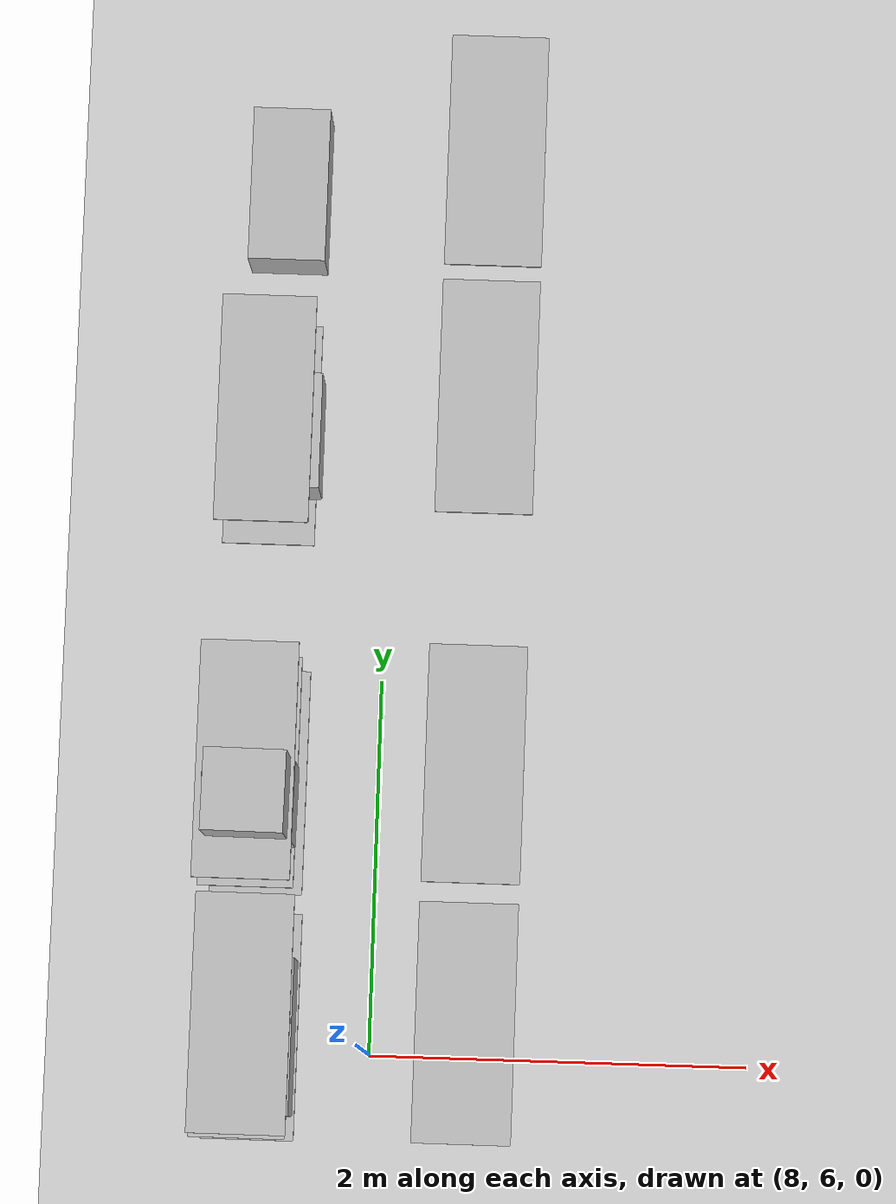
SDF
<sdf version="1.6">
 <world name="default">
  <model name="ground_plane">
   <static>1</static>
   <link name="link">
    <collision name="collision">
     <geometry><plane><normal>0 0 1</normal><size>300 300</size></plane></geometry>
     <surface>
      <contact><collide_bitmask>65535</collide_bitmask></contact>
      <friction><ode><mu>100</mu><mu2>50</mu2></ode></friction>
     </surface>
    </collision>
    <visual name="visual">
     <geometry><plane><normal>0 0 1</normal><size>100 100</size></plane></geometry>
     <material>
      <script><uri>file://media/materials/scripts/gazebo.material</uri><name>Gazebo/Grey</name></script>
     </material>
    </visual>
   </link>
  </model>
  <model name="Plano">
   <link name="link">
    <gravity>0</gravity>
    <pose>-0.103478 0.986463 0.8108 0 -0 0</pose>
    <inertial>
     <mass>1e-06</mass>
     <inertia><ixx>0.00058</ixx><ixy>0</ixy><ixz>0</ixz><iyy>0.00058</iyy><iyz>0</iyz><izz>0.00019</izz></inertia>
    </inertial>
    <visual name="visual">
     <geometry><box><size>0.2 1e-06 0.2</size></box></geometry>
     <material>
      <script>
       <uri>model://Plano/materials/scripts</uri>
       <uri>model://Plano/materials/textures</uri>
       <name>Plano/Diffuse</name>
      </script>
      <shader type="pixel"/>
     </material>
     <cast_shadows>0</cast_shadows>
    </visual>
    <collision name="collision">
     <geometry><box><size>0.2 1e-06 0.2</size></box></geometry>
     <surface>
      <friction>
       <ode><mu>1</mu><mu2>1</mu2><fdir1>0 0 0</fdir1><slip1>0</slip1><slip2>0</slip2></ode>
       <torsional>
        <coefficient>1</coefficient>
        <patch_radius>0</patch_radius>
        <surface_radius>0</surface_radius>
        <use_patch_radius>1</use_patch_radius>
        <ode><slip>0</slip></ode>
       </torsional>
      </friction>
      <bounce><restitution_coefficient>0</restitution_coefficient><threshold>1e+06</threshold></bounce>
      <contact>
       <collide_without_contact>0</collide_without_contact>
       <collide_without_contact_bitmask>1</collide_without_contact_bitmask>
       <collide_bitmask>1</collide_bitmask>
       <ode>
        <soft_cfm>0</soft_cfm>
        <soft_erp>0.2</soft_erp>
        <kp>1e+13</kp>
        <kd>1</kd>
        <max_vel>0.01</max_vel>
        <min_depth>0</min_depth>
       </ode>
       <bullet>
        <split_impulse>1</split_impulse>
        <split_impulse_penetration_threshold>-0.01</split_impulse_penetration_threshold>
        <soft_cfm>0</soft_cfm>
        <soft_erp>0.2</soft_erp>
        <kp>1e+13</kp>
        <kd>1</kd>
       </bullet>
      </contact>
     </surface>
    </collision>
   </link>
   <static>0</static>
   <pose>6.24495 5.89293 0.053748 0 0 -1.57043</pose>
  </model>
  <model name="Plano2">
   <link name="link">
    <gravity>0</gravity>
    <pose>0.45527 1.12131 0.660976 0 -0 0</pose>
    <inertial>
     <mass>1e-06</mass>
     <inertia><ixx>0.00058</ixx><ixy>0</ixy><ixz>0</ixz><iyy>0.00058</iyy><iyz>0</iyz><izz>0.00019</izz></inertia>
    </inertial>
    <visual name="visual">
     <geometry><box><size>0.2 1e-06 0.2</size></box></geometry>
     <material>
      <script>
       <uri>model://Plano2/materials/scripts</uri>
       <uri>model://Plano2/materials/textures</uri>
       <name>Plano2/Diffuse</name>
      </script>
      <shader type="pixel"/>
     </material>
     <cast_shadows>0</cast_shadows>
    </visual>
    <collision name="collision">
     <geometry><box><size>0.2 1e-06 0.2</size></box></geometry>
     <surface>
      <friction>
       <ode><mu>1</mu><mu2>1</mu2><fdir1>0 0 0</fdir1><slip1>0</slip1><slip2>0</slip2></ode>
       <torsional>
        <coefficient>1</coefficient>
        <patch_radius>0</patch_radius>
        <surface_radius>0</surface_radius>
        <use_patch_radius>1</use_patch_radius>
        <ode><slip>0</slip></ode>
       </torsional>
      </friction>
      <bounce><restitution_coefficient>0</restitution_coefficient><threshold>1e+06</threshold></bounce>
      <contact>
       <collide_without_contact>0</collide_without_contact>
       <collide_without_contact_bitmask>1</collide_without_contact_bitmask>
       <collide_bitmask>1</collide_bitmask>
       <ode>
        <soft_cfm>0</soft_cfm>
        <soft_erp>0.2</soft_erp>
        <kp>1e+13</kp>
        <kd>1</kd>
        <max_vel>0.01</max_vel>
        <min_depth>0</min_depth>
       </ode>
       <bullet>
        <split_impulse>1</split_impulse>
        <split_impulse_penetration_threshold>-0.01</split_impulse_penetration_threshold>
        <soft_cfm>0</soft_cfm>
        <soft_erp>0.2</soft_erp>
        <kp>1e+13</kp>
        <kd>1</kd>
       </bullet>
      </contact>
     </surface>
    </collision>
   </link>
   <static>0</static>
   <pose>6.11634 6.41923 0.907634 0 0 -1.5813</pose>
  </model>
  <model name="Plano3">
   <link name="link">
    <gravity>0</gravity>
    <pose>-0.321438 0.622252 1.59842 0 -0 0</pose>
    <inertial>
     <mass>1e-06</mass>
     <inertia><ixx>0.00058</ixx><ixy>0</ixy><ixz>0</ixz><iyy>0.00058</iyy><iyz>0</iyz><izz>0.00019</izz></inertia>
    </inertial>
    <visual name="visual">
     <geometry><box><size>0.2 1e-06 0.2</size></box></geometry>
     <material>
      <script>
       <uri>model://Plano3/materials/scripts</uri>
       <uri>model://Plano3/materials/textures</uri>
       <name>Plano3/Diffuse</name>
      </script>
      <shader type="pixel"/>
     </material>
     <cast_shadows>0</cast_shadows>
    </visual>
    <collision name="collision">
     <geometry><box><size>0.2 1e-06 0.2</size></box></geometry>
     <surface>
      <friction>
       <ode><mu>1</mu><mu2>1</mu2><fdir1>0 0 0</fdir1><slip1>0</slip1><slip2>0</slip2></ode>
       <torsional>
        <coefficient>1</coefficient>
        <patch_radius>0</patch_radius>
        <surface_radius>0</surface_radius>
        <use_patch_radius>1</use_patch_radius>
        <ode><slip>0</slip></ode>
       </torsional>
      </friction>
      <bounce><restitution_coefficient>0</restitution_coefficient><threshold>1e+06</threshold></bounce>
      <contact>
       <collide_without_contact>0</collide_without_contact>
       <collide_without_contact_bitmask>1</collide_without_contact_bitmask>
       <collide_bitmask>1</collide_bitmask>
       <ode>
        <soft_cfm>0</soft_cfm>
        <soft_erp>0.2</soft_erp>
        <kp>1e+13</kp>
        <kd>1</kd>
        <max_vel>0.01</max_vel>
        <min_depth>0</min_depth>
       </ode>
       <bullet>
        <split_impulse>1</split_impulse>
        <split_impulse_penetration_threshold>-0.01</split_impulse_penetration_threshold>
        <soft_cfm>0</soft_cfm>
        <soft_erp>0.2</soft_erp>
        <kp>1e+13</kp>
        <kd>1</kd>
       </bullet>
      </contact>
     </surface>
    </collision>
   </link>
   <static>0</static>
   <pose>6.60144 6.90216 -0.05097 0 0 -1.57531</pose>
  </model>
  <model name="Plano4">
   <link name="link">
    <gravity>0</gravity>
    <pose>0.342529 1.36427 1.91258 0 -0 0.032722</pose>
    <inertial>
     <mass>1e-06</mass>
     <inertia><ixx>0.00058</ixx><ixy>0</ixy><ixz>0</ixz><iyy>0.00058</iyy><iyz>0</iyz><izz>0.00019</izz></inertia>
    </inertial>
    <visual name="visual">
     <geometry><box><size>0.2 1e-06 0.2</size></box></geometry>
     <material>
      <script>
       <uri>model://Plano4/materials/scripts</uri>
       <uri>model://Plano4/materials/textures</uri>
       <name>Plano4/Diffuse</name>
      </script>
      <shader type="pixel"/>
     </material>
     <cast_shadows>0</cast_shadows>
    </visual>
    <collision name="collision">
     <geometry><box><size>0.2 1e-06 0.2</size></box></geometry>
     <surface>
      <friction>
       <ode><mu>1</mu><mu2>1</mu2><fdir1>0 0 0</fdir1><slip1>0</slip1><slip2>0</slip2></ode>
       <torsional>
        <coefficient>1</coefficient>
        <patch_radius>0</patch_radius>
        <surface_radius>0</surface_radius>
        <use_patch_radius>1</use_patch_radius>
        <ode><slip>0</slip></ode>
       </torsional>
      </friction>
      <bounce><restitution_coefficient>0</restitution_coefficient><threshold>1e+06</threshold></bounce>
      <contact>
       <collide_without_contact>0</collide_without_contact>
       <collide_without_contact_bitmask>1</collide_without_contact_bitmask>
       <collide_bitmask>1</collide_bitmask>
       <ode>
        <soft_cfm>0</soft_cfm>
        <soft_erp>0.2</soft_erp>
        <kp>1e+13</kp>
        <kd>1</kd>
        <max_vel>0.01</max_vel>
        <min_depth>0</min_depth>
       </ode>
       <bullet>
        <split_impulse>1</split_impulse>
        <split_impulse_penetration_threshold>-0.01</split_impulse_penetration_threshold>
        <soft_cfm>0</soft_cfm>
        <soft_erp>0.2</soft_erp>
        <kp>1e+13</kp>
        <kd>1</kd>
       </bullet>
      </contact>
     </surface>
    </collision>
   </link>
   <static>0</static>
   <pose>5.86012 7.53798 0.26346 0 0 -1.5802</pose>
  </model>
  <model name="unit_box_clone_8">
   <link name="link">
    <inertial>
     <mass>0.00922354</mass>
     <inertia>
      <ixx>0.00104733</ixx>
      <ixy>0</ixy>
      <ixz>0</ixz>
      <iyy>0.000178965</iyy>
      <iyz>0</iyz>
      <izz>0.00122588</izz>
     </inertia>
    </inertial>
    <pose>1.0387 1.15619 1.50314 -0 -0 -0</pose>
    <visual name="visual">
     <geometry><box><size>0.482252 1.16718 0.016436</size></box></geometry>
     <material>
      <script>
       <uri>model://unit_box/materials/scripts</uri>
       <uri>model://unit_box/materials/textures</uri>
       <name>shelveMat/Diffuse</name>
      </script>
      <shader type="pixel"/>
     </material>
    </visual>
    <collision name="collision">
     <geometry><box><size>0.482252 1.16718 0.016436</size></box></geometry>
     <surface>
      <friction>
       <ode><mu>1</mu><mu2>1</mu2><fdir1>0 0 0</fdir1><slip1>0</slip1><slip2>0</slip2></ode>
       <torsional>
        <coefficient>1</coefficient>
        <patch_radius>0</patch_radius>
        <surface_radius>0</surface_radius>
        <use_patch_radius>1</use_patch_radius>
        <ode><slip>0</slip></ode>
       </torsional>
      </friction>
      <bounce><restitution_coefficient>0</restitution_coefficient><threshold>1e+06</threshold></bounce>
      <contact>
       <collide_without_contact>0</collide_without_contact>
       <collide_without_contact_bitmask>1</collide_without_contact_bitmask>
       <collide_bitmask>1</collide_bitmask>
       <ode>
        <soft_cfm>0</soft_cfm>
        <soft_erp>0.2</soft_erp>
        <kp>1e+13</kp>
        <kd>1</kd>
        <max_vel>0.01</max_vel>
        <min_depth>0</min_depth>
       </ode>
       <bullet>
        <split_impulse>1</split_impulse>
        <split_impulse_penetration_threshold>-0.01</split_impulse_penetration_threshold>
        <soft_cfm>0</soft_cfm>
        <soft_erp>0.2</soft_erp>
        <kp>1e+13</kp>
        <kd>1</kd>
       </bullet>
      </contact>
     </surface>
    </collision>
   </link>
   <static>1</static>
   <pose>7.48945 6.23288 0.509169 0 -1e-06 -0.002445</pose>
  </model>
  <model name="unit_box_clone_9">
   <link name="link">
    <inertial>
     <mass>0.00922354</mass>
     <inertia>
      <ixx>0.00104733</ixx>
      <ixy>0</ixy>
      <ixz>0</ixz>
      <iyy>0.000178965</iyy>
      <iyz>0</iyz>
      <izz>0.00122588</izz>
     </inertia>
    </inertial>
    <pose>1.0387 1.15619 1.50314 -0 -0 -0</pose>
    <visual name="visual">
     <geometry><box><size>0.482252 1.16718 0.016436</size></box></geometry>
     <material>
      <script>
       <uri>model://unit_box/materials/scripts</uri>
       <uri>model://unit_box/materials/textures</uri>
       <name>shelveMat/Diffuse</name>
      </script>
      <shader type="pixel"/>
     </material>
    </visual>
    <collision name="collision">
     <geometry><box><size>0.482252 1.16718 0.016436</size></box></geometry>
     <surface>
      <friction>
       <ode><mu>1</mu><mu2>1</mu2><fdir1>0 0 0</fdir1><slip1>0</slip1><slip2>0</slip2></ode>
       <torsional>
        <coefficient>1</coefficient>
        <patch_radius>0</patch_radius>
        <surface_radius>0</surface_radius>
        <use_patch_radius>1</use_patch_radius>
        <ode><slip>0</slip></ode>
       </torsional>
      </friction>
      <bounce><restitution_coefficient>0</restitution_coefficient><threshold>1e+06</threshold></bounce>
      <contact>
       <collide_without_contact>0</collide_without_contact>
       <collide_without_contact_bitmask>1</collide_without_contact_bitmask>
       <collide_bitmask>1</collide_bitmask>
       <ode>
        <soft_cfm>0</soft_cfm>
        <soft_erp>0.2</soft_erp>
        <kp>1e+13</kp>
        <kd>1</kd>
        <max_vel>0.01</max_vel>
        <min_depth>0</min_depth>
       </ode>
       <bullet>
        <split_impulse>1</split_impulse>
        <split_impulse_penetration_threshold>-0.01</split_impulse_penetration_threshold>
        <soft_cfm>0</soft_cfm>
        <soft_erp>0.2</soft_erp>
        <kp>1e+13</kp>
        <kd>1</kd>
       </bullet>
      </contact>
     </surface>
    </collision>
   </link>
   <static>1</static>
   <pose>7.48456 4.97044 0.509169 0 -1e-06 -0.002445</pose>
  </model>
  <model name="unit_box_clone_10_clone_0">
   <link name="link">
    <inertial>
     <mass>0.00922354</mass>
     <inertia>
      <ixx>0.00104733</ixx>
      <ixy>0</ixy>
      <ixz>0</ixz>
      <iyy>0.000178965</iyy>
      <iyz>0</iyz>
      <izz>0.00122588</izz>
     </inertia>
    </inertial>
    <pose>2.16821 0.157655 0.848426 -0 -0 -0</pose>
    <visual name="visual">
     <geometry><box><size>0.482252 1.16718 0.016436</size></box></geometry>
     <material>
      <script>
       <uri>model://unit_box/materials/scripts</uri>
       <uri>model://unit_box/materials/textures</uri>
       <name>shelveMat/Diffuse</name>
      </script>
      <shader type="pixel"/>
     </material>
    </visual>
    <collision name="collision">
     <geometry><box><size>0.482252 1.16718 0.016436</size></box></geometry>
     <surface>
      <friction>
       <ode><mu>1</mu><mu2>1</mu2><fdir1>0 0 0</fdir1><slip1>0</slip1><slip2>0</slip2></ode>
       <torsional>
        <coefficient>1</coefficient>
        <patch_radius>0</patch_radius>
        <surface_radius>0</surface_radius>
        <use_patch_radius>1</use_patch_radius>
        <ode><slip>0</slip></ode>
       </torsional>
      </friction>
      <bounce><restitution_coefficient>0</restitution_coefficient><threshold>1e+06</threshold></bounce>
      <contact>
       <collide_without_contact>0</collide_without_contact>
       <collide_without_contact_bitmask>1</collide_without_contact_bitmask>
       <collide_bitmask>1</collide_bitmask>
       <ode>
        <soft_cfm>0</soft_cfm>
        <soft_erp>0.2</soft_erp>
        <kp>1e+13</kp>
        <kd>1</kd>
        <max_vel>0.01</max_vel>
        <min_depth>0</min_depth>
       </ode>
       <bullet>
        <split_impulse>1</split_impulse>
        <split_impulse_penetration_threshold>-0.01</split_impulse_penetration_threshold>
        <soft_cfm>0</soft_cfm>
        <soft_erp>0.2</soft_erp>
        <kp>1e+13</kp>
        <kd>1</kd>
       </bullet>
      </contact>
     </surface>
    </collision>
   </link>
   <static>1</static>
   <pose>5.22878 9.08121 0.509172 0 -1e-06 -0.002445</pose>
  </model>
  <model name="CuboQR30">
   <link name="link">
    <pose>1.4917 0.506437 0.924914 0 0 -0.022438</pose>
    <inertial>
     <mass>0.39</mass>
     <inertia><ixx>0.00058</ixx><ixy>0</ixy><ixz>0</ixz><iyy>0.00058</iyy><iyz>0</iyz><izz>0.00019</izz></inertia>
    </inertial>
    <visual name="visual">
     <geometry><box><size>0.4 0.6 0.4</size></box></geometry>
     <material>
      <script>
       <uri>model://Caja/materials/scripts</uri>
       <uri>model://Caja/materials/textures</uri>
       <name>Caja/Diffuse</name>
      </script>
      <shader type="pixel"/>
     </material>
    </visual>
    <collision name="collision">
     <geometry><box><size>0.4 0.6 0.4</size></box></geometry>
     <surface>
      <friction>
       <ode><mu>1</mu><mu2>1</mu2><fdir1>0 0 0</fdir1><slip1>0</slip1><slip2>0</slip2></ode>
       <torsional>
        <coefficient>1</coefficient>
        <patch_radius>0</patch_radius>
        <surface_radius>0</surface_radius>
        <use_patch_radius>1</use_patch_radius>
        <ode><slip>0</slip></ode>
       </torsional>
      </friction>
      <bounce><restitution_coefficient>0</restitution_coefficient><threshold>1e+06</threshold></bounce>
      <contact>
       <collide_without_contact>0</collide_without_contact>
       <collide_without_contact_bitmask>1</collide_without_contact_bitmask>
       <collide_bitmask>1</collide_bitmask>
       <ode>
        <soft_cfm>0</soft_cfm>
        <soft_erp>0.2</soft_erp>
        <kp>1e+13</kp>
        <kd>1</kd>
        <max_vel>0.01</max_vel>
        <min_depth>0</min_depth>
       </ode>
       <bullet>
        <split_impulse>1</split_impulse>
        <split_impulse_penetration_threshold>-0.01</split_impulse_penetration_threshold>
        <soft_cfm>0</soft_cfm>
        <soft_erp>0.2</soft_erp>
        <kp>1e+13</kp>
        <kd>1</kd>
       </bullet>
      </contact>
     </surface>
    </collision>
   </link>
   <static>1</static>
   <pose>5.98841 8.63396 -0.058054 -0.003047 6.7e-05 0.022438</pose>
  </model>
  <model name="unit_box_clone_0_clone">
   <link name="link">
    <inertial>
     <mass>0.00922354</mass>
     <inertia>
      <ixx>0.00104733</ixx>
      <ixy>0</ixy>
      <ixz>0</ixz>
      <iyy>0.000178965</iyy>
      <iyz>0</iyz>
      <izz>0.00122588</izz>
     </inertia>
    </inertial>
    <pose>1.0387 1.15619 1.50314 -0 -0 -0</pose>
    <visual name="visual">
     <geometry><box><size>0.482252 1.16718 0.016436</size></box></geometry>
     <material>
      <script>
       <uri>model://unit_box/materials/scripts</uri>
       <uri>model://unit_box/materials/textures</uri>
       <name>shelveMat/Diffuse</name>
      </script>
      <shader type="pixel"/>
     </material>
    </visual>
    <collision name="collision">
     <geometry><box><size>0.482252 1.16718 0.016436</size></box></geometry>
     <surface>
      <friction>
       <ode><mu>1</mu><mu2>1</mu2><fdir1>0 0 0</fdir1><slip1>0</slip1><slip2>0</slip2></ode>
       <torsional>
        <coefficient>1</coefficient>
        <patch_radius>0</patch_radius>
        <surface_radius>0</surface_radius>
        <use_patch_radius>1</use_patch_radius>
        <ode><slip>0</slip></ode>
       </torsional>
      </friction>
      <bounce><restitution_coefficient>0</restitution_coefficient><threshold>1e+06</threshold></bounce>
      <contact>
       <collide_without_contact>0</collide_without_contact>
       <collide_without_contact_bitmask>1</collide_without_contact_bitmask>
       <collide_bitmask>1</collide_bitmask>
       <ode>
        <soft_cfm>0</soft_cfm>
        <soft_erp>0.2</soft_erp>
        <kp>1e+13</kp>
        <kd>1</kd>
        <max_vel>0.01</max_vel>
        <min_depth>0</min_depth>
       </ode>
       <bullet>
        <split_impulse>1</split_impulse>
        <split_impulse_penetration_threshold>-0.01</split_impulse_penetration_threshold>
        <soft_cfm>0</soft_cfm>
        <soft_erp>0.2</soft_erp>
        <kp>1e+13</kp>
        <kd>1</kd>
       </bullet>
      </contact>
     </surface>
    </collision>
   </link>
   <static>1</static>
   <pose>6.36925 6.2205 0.509169 0 -1e-06 -0.002445</pose>
  </model>
  <model name="CuboQR3">
   <link name="link">
    <pose>1.72852 -0.054688 2.2694 0 -0 0.030523</pose>
    <inertial>
     <mass>0.39</mass>
     <inertia><ixx>0.00058</ixx><ixy>0</ixy><ixz>0</ixz><iyy>0.00058</iyy><iyz>0</iyz><izz>0.00019</izz></inertia>
    </inertial>
    <visual name="visual">
     <geometry><box><size>0.4 0.4 0.4</size></box></geometry>
     <material>
      <script>
       <uri>model://Caja/materials/scripts</uri>
       <uri>model://Caja/materials/textures</uri>
       <name>Caja/Diffuse</name>
      </script>
      <shader type="pixel"/>
     </material>
    </visual>
    <collision name="collision">
     <geometry><box><size>0.4 0.4 0.4</size></box></geometry>
     <surface>
      <friction>
       <ode><mu>1</mu><mu2>1</mu2><fdir1>0 0 0</fdir1><slip1>0</slip1><slip2>0</slip2></ode>
       <torsional>
        <coefficient>1</coefficient>
        <patch_radius>0</patch_radius>
        <surface_radius>0</surface_radius>
        <use_patch_radius>1</use_patch_radius>
        <ode><slip>0</slip></ode>
       </torsional>
      </friction>
      <bounce><restitution_coefficient>0</restitution_coefficient><threshold>1e+06</threshold></bounce>
      <contact>
       <collide_without_contact>0</collide_without_contact>
       <collide_without_contact_bitmask>1</collide_without_contact_bitmask>
       <collide_bitmask>1</collide_bitmask>
       <ode>
        <soft_cfm>0</soft_cfm>
        <soft_erp>0.2</soft_erp>
        <kp>1e+13</kp>
        <kd>1</kd>
        <max_vel>0.01</max_vel>
        <min_depth>0</min_depth>
       </ode>
       <bullet>
        <split_impulse>1</split_impulse>
        <split_impulse_penetration_threshold>-0.01</split_impulse_penetration_threshold>
        <soft_cfm>0</soft_cfm>
        <soft_erp>0.2</soft_erp>
        <kp>1e+13</kp>
        <kd>1</kd>
       </bullet>
      </contact>
     </surface>
    </collision>
   </link>
   <static>1</static>
   <pose>5.70679 7.31501 -0.05484 9.2e-05 3e-06 -0.040261</pose>
  </model>
  <model name="Caja">
   <link name="link">
    <pose>1.53855 1.37774 -1.37116 0.031423 0.044064 -0.000927</pose>
    <inertial>
     <mass>0.39</mass>
     <inertia><ixx>0.00058</ixx><ixy>0</ixy><ixz>0</ixz><iyy>0.00058</iyy><iyz>0</iyz><izz>0.00019</izz></inertia>
    </inertial>
    <visual name="visual">
     <geometry><box><size>0.4 0.4 0.4</size></box></geometry>
     <material>
      <script>
       <uri>model://Caja/materials/scripts</uri>
       <uri>model://Caja/materials/textures</uri>
       <name>Caja/Diffuse</name>
      </script>
      <shader type="pixel"/>
     </material>
    </visual>
    <collision name="collision">
     <geometry><box><size>0.4 0.4 0.4</size></box></geometry>
     <surface>
      <friction>
       <ode><mu>1</mu><mu2>1</mu2><fdir1>0 0 0</fdir1><slip1>0</slip1><slip2>0</slip2></ode>
       <torsional>
        <coefficient>1</coefficient>
        <patch_radius>0</patch_radius>
        <surface_radius>0</surface_radius>
        <use_patch_radius>1</use_patch_radius>
        <ode><slip>0</slip></ode>
       </torsional>
      </friction>
      <bounce><restitution_coefficient>0</restitution_coefficient><threshold>1e+06</threshold></bounce>
      <contact>
       <collide_without_contact>0</collide_without_contact>
       <collide_without_contact_bitmask>1</collide_without_contact_bitmask>
       <collide_bitmask>1</collide_bitmask>
       <ode>
        <soft_cfm>0</soft_cfm>
        <soft_erp>0.2</soft_erp>
        <kp>1e+13</kp>
        <kd>1</kd>
        <max_vel>0.01</max_vel>
        <min_depth>0</min_depth>
       </ode>
       <bullet>
        <split_impulse>1</split_impulse>
        <split_impulse_penetration_threshold>-0.01</split_impulse_penetration_threshold>
        <soft_cfm>0</soft_cfm>
        <soft_erp>0.2</soft_erp>
        <kp>1e+13</kp>
        <kd>1</kd>
       </bullet>
      </contact>
     </surface>
    </collision>
   </link>
   <static>1</static>
   <pose>5.82242 5.8779 0.229089 1.5394 -0.002295 -0.059688</pose>
  </model>
  <model name="unit_box_clone_0_clone_clone">
   <link name="link">
    <inertial>
     <mass>0.00922354</mass>
     <inertia>
      <ixx>0.00104733</ixx>
      <ixy>0</ixy>
      <ixz>0</ixz>
      <iyy>0.000178965</iyy>
      <iyz>0</iyz>
      <izz>0.00122588</izz>
     </inertia>
    </inertial>
    <pose>2.44129 1.43392 0.842363 -0 -0 -0</pose>
    <visual name="visual">
     <geometry><box><size>0.482252 1.16718 0.016436</size></box></geometry>
     <material>
      <script>
       <uri>model://unit_box/materials/scripts</uri>
       <uri>model://unit_box/materials/textures</uri>
       <name>shelveMat/Diffuse</name>
      </script>
      <shader type="pixel"/>
     </material>
    </visual>
    <collision name="collision">
     <geometry><box><size>0.482252 1.16718 0.016436</size></box></geometry>
     <surface>
      <friction>
       <ode><mu>1</mu><mu2>1</mu2><fdir1>0 0 0</fdir1><slip1>0</slip1><slip2>0</slip2></ode>
       <torsional>
        <coefficient>1</coefficient>
        <patch_radius>0</patch_radius>
        <surface_radius>0</surface_radius>
        <use_patch_radius>1</use_patch_radius>
        <ode><slip>0</slip></ode>
       </torsional>
      </friction>
      <bounce><restitution_coefficient>0</restitution_coefficient><threshold>1e+06</threshold></bounce>
      <contact>
       <collide_without_contact>0</collide_without_contact>
       <collide_without_contact_bitmask>1</collide_without_contact_bitmask>
       <collide_bitmask>1</collide_bitmask>
       <ode>
        <soft_cfm>0</soft_cfm>
        <soft_erp>0.2</soft_erp>
        <kp>1e+13</kp>
        <kd>1</kd>
        <max_vel>0.01</max_vel>
        <min_depth>0</min_depth>
       </ode>
       <bullet>
        <split_impulse>1</split_impulse>
        <split_impulse_penetration_threshold>-0.01</split_impulse_penetration_threshold>
        <soft_cfm>0</soft_cfm>
        <soft_erp>0.2</soft_erp>
        <kp>1e+13</kp>
        <kd>1</kd>
       </bullet>
      </contact>
     </surface>
    </collision>
   </link>
   <static>1</static>
   <pose>4.9484 5.94952 0.509165 0 -1e-06 -0.002445</pose>
  </model>
  <model name="unit_box_clone_0_clone_clone_clone">
   <link name="link">
    <inertial>
     <mass>0.00922354</mass>
     <inertia>
      <ixx>0.00104733</ixx>
      <ixy>0</ixy>
      <ixz>0</ixz>
      <iyy>0.000178965</iyy>
      <iyz>0</iyz>
      <izz>0.00122588</izz>
     </inertia>
    </inertial>
    <pose>2.03529 -0.824545 0.842363 -0 -0 -0</pose>
    <visual name="visual">
     <geometry><box><size>0.482252 1.16718 0.016436</size></box></geometry>
     <material>
      <script>
       <uri>model://unit_box/materials/scripts</uri>
       <uri>model://unit_box/materials/textures</uri>
       <name>shelveMat/Diffuse</name>
      </script>
      <shader type="pixel"/>
     </material>
    </visual>
    <collision name="collision">
     <geometry><box><size>0.482252 1.16718 0.016436</size></box></geometry>
     <surface>
      <friction>
       <ode><mu>1</mu><mu2>1</mu2><fdir1>0 0 0</fdir1><slip1>0</slip1><slip2>0</slip2></ode>
       <torsional>
        <coefficient>1</coefficient>
        <patch_radius>0</patch_radius>
        <surface_radius>0</surface_radius>
        <use_patch_radius>1</use_patch_radius>
        <ode><slip>0</slip></ode>
       </torsional>
      </friction>
      <bounce><restitution_coefficient>0</restitution_coefficient><threshold>1e+06</threshold></bounce>
      <contact>
       <collide_without_contact>0</collide_without_contact>
       <collide_without_contact_bitmask>1</collide_without_contact_bitmask>
       <collide_bitmask>1</collide_bitmask>
       <ode>
        <soft_cfm>0</soft_cfm>
        <soft_erp>0.2</soft_erp>
        <kp>1e+13</kp>
        <kd>1</kd>
        <max_vel>0.01</max_vel>
        <min_depth>0</min_depth>
       </ode>
       <bullet>
        <split_impulse>1</split_impulse>
        <split_impulse_penetration_threshold>-0.01</split_impulse_penetration_threshold>
        <soft_cfm>0</soft_cfm>
        <soft_erp>0.2</soft_erp>
        <kp>1e+13</kp>
        <kd>1</kd>
       </bullet>
      </contact>
     </surface>
    </collision>
   </link>
   <static>1</static>
   <pose>5.36496 6.95336 0.509165 0 -1e-06 -0.002445</pose>
  </model>
  <model name="unit_box_clone_10_clone_clone_clone">
   <link name="link">
    <inertial>
     <mass>0.00922354</mass>
     <inertia>
      <ixx>0.00104733</ixx>
      <ixy>0</ixy>
      <ixz>0</ixz>
      <iyy>0.000178965</iyy>
      <iyz>0</iyz>
      <izz>0.00122588</izz>
     </inertia>
    </inertial>
    <pose>0.820816 -0.395541 0.148735 -0 -0 -0</pose>
    <visual name="visual">
     <geometry><box><size>0.482252 1.16718 0.016436</size></box></geometry>
     <material>
      <script>
       <uri>model://unit_box/materials/scripts</uri>
       <uri>model://unit_box/materials/textures</uri>
       <name>shelveMat/Diffuse</name>
      </script>
      <shader type="pixel"/>
     </material>
    </visual>
    <collision name="collision">
     <geometry><box><size>0.482252 1.16718 0.016436</size></box></geometry>
     <surface>
      <friction>
       <ode><mu>1</mu><mu2>1</mu2><fdir1>0 0 0</fdir1><slip1>0</slip1><slip2>0</slip2></ode>
       <torsional>
        <coefficient>1</coefficient>
        <patch_radius>0</patch_radius>
        <surface_radius>0</surface_radius>
        <use_patch_radius>1</use_patch_radius>
        <ode><slip>0</slip></ode>
       </torsional>
      </friction>
      <bounce><restitution_coefficient>0</restitution_coefficient><threshold>1e+06</threshold></bounce>
      <contact>
       <collide_without_contact>0</collide_without_contact>
       <collide_without_contact_bitmask>1</collide_without_contact_bitmask>
       <collide_bitmask>1</collide_bitmask>
       <ode>
        <soft_cfm>0</soft_cfm>
        <soft_erp>0.2</soft_erp>
        <kp>1e+13</kp>
        <kd>1</kd>
        <max_vel>0.01</max_vel>
        <min_depth>0</min_depth>
       </ode>
       <bullet>
        <split_impulse>1</split_impulse>
        <split_impulse_penetration_threshold>-0.01</split_impulse_penetration_threshold>
        <soft_cfm>0</soft_cfm>
        <soft_erp>0.2</soft_erp>
        <kp>1e+13</kp>
        <kd>1</kd>
       </bullet>
      </contact>
     </surface>
    </collision>
   </link>
   <static>1</static>
   <pose>6.57754 9.6134 0.509169 0 -1e-06 -0.002445</pose>
  </model>
  <model name="unit_box_clone_10_clone_clone_clone_clone_clone">
   <link name="link">
    <inertial>
     <mass>0.00922354</mass>
     <inertia>
      <ixx>0.00104733</ixx>
      <ixy>0</ixy>
      <ixz>0</ixz>
      <iyy>0.000178965</iyy>
      <iyz>0</iyz>
      <izz>0.00122588</izz>
     </inertia>
    </inertial>
    <pose>0.807225 -0.395541 0.148735 -0 -0 -0</pose>
    <visual name="visual">
     <geometry><box><size>0.482252 1.16718 0.016436</size></box></geometry>
     <material>
      <script>
       <uri>model://unit_box/materials/scripts</uri>
       <uri>model://unit_box/materials/textures</uri>
       <name>shelveMat/Diffuse</name>
      </script>
      <shader type="pixel"/>
     </material>
    </visual>
    <collision name="collision">
     <geometry><box><size>0.482252 1.16718 0.016436</size></box></geometry>
     <surface>
      <friction>
       <ode><mu>1</mu><mu2>1</mu2><fdir1>0 0 0</fdir1><slip1>0</slip1><slip2>0</slip2></ode>
       <torsional>
        <coefficient>1</coefficient>
        <patch_radius>0</patch_radius>
        <surface_radius>0</surface_radius>
        <use_patch_radius>1</use_patch_radius>
        <ode><slip>0</slip></ode>
       </torsional>
      </friction>
      <bounce><restitution_coefficient>0</restitution_coefficient><threshold>1e+06</threshold></bounce>
      <contact>
       <collide_without_contact>0</collide_without_contact>
       <collide_without_contact_bitmask>1</collide_without_contact_bitmask>
       <collide_bitmask>1</collide_bitmask>
       <ode>
        <soft_cfm>0</soft_cfm>
        <soft_erp>0.2</soft_erp>
        <kp>1e+13</kp>
        <kd>1</kd>
        <max_vel>0.01</max_vel>
        <min_depth>0</min_depth>
       </ode>
       <bullet>
        <split_impulse>1</split_impulse>
        <split_impulse_penetration_threshold>-0.01</split_impulse_penetration_threshold>
        <soft_cfm>0</soft_cfm>
        <soft_erp>0.2</soft_erp>
        <kp>1e+13</kp>
        <kd>1</kd>
       </bullet>
      </contact>
     </surface>
    </collision>
   </link>
   <static>1</static>
   <pose>6.6006 6.51777 0.509169 0 -1e-06 -0.002445</pose>
  </model>
  <model name="CuboQR4">
   <link name="link">
    <pose>1.46041 1.77783 0.96423 0 0 -0.090206</pose>
    <inertial>
     <mass>0.39</mass>
     <inertia><ixx>0.00058</ixx><ixy>0</ixy><ixz>0</ixz><iyy>0.00058</iyy><iyz>0</iyz><izz>0.00019</izz></inertia>
    </inertial>
    <visual name="visual">
     <geometry><box><size>0.4 0.8 0.4</size></box></geometry>
     <material>
      <script>
       <uri>model://Caja/materials/scripts</uri>
       <uri>model://Caja/materials/textures</uri>
       <name>Caja/Diffuse</name>
      </script>
      <shader type="pixel"/>
     </material>
    </visual>
    <collision name="collision">
     <geometry><box><size>0.4 0.8 0.4</size></box></geometry>
     <surface>
      <friction>
       <ode><mu>1</mu><mu2>1</mu2><fdir1>0 0 0</fdir1><slip1>0</slip1><slip2>0</slip2></ode>
       <torsional>
        <coefficient>1</coefficient>
        <patch_radius>0</patch_radius>
        <surface_radius>0</surface_radius>
        <use_patch_radius>1</use_patch_radius>
        <ode><slip>0</slip></ode>
       </torsional>
      </friction>
      <bounce><restitution_coefficient>0</restitution_coefficient><threshold>1e+06</threshold></bounce>
      <contact>
       <collide_without_contact>0</collide_without_contact>
       <collide_without_contact_bitmask>1</collide_without_contact_bitmask>
       <collide_bitmask>1</collide_bitmask>
       <ode>
        <soft_cfm>0</soft_cfm>
        <soft_erp>0.2</soft_erp>
        <kp>1e+13</kp>
        <kd>1</kd>
        <max_vel>0.01</max_vel>
        <min_depth>0</min_depth>
       </ode>
       <bullet>
        <split_impulse>1</split_impulse>
        <split_impulse_penetration_threshold>-0.01</split_impulse_penetration_threshold>
        <soft_cfm>0</soft_cfm>
        <soft_erp>0.2</soft_erp>
        <kp>1e+13</kp>
        <kd>1</kd>
       </bullet>
      </contact>
     </surface>
    </collision>
   </link>
   <static>1</static>
   <pose>6.13676 4.16202 -0.089688 4.5e-05 -1.1e-05 0.087488</pose>
  </model>
  <model name="CuboQR2">
   <link name="link">
    <pose>1.59419 -0.501465 1.61214 0 0 -0.004218</pose>
    <inertial>
     <mass>0.39</mass>
     <inertia><ixx>0.00058</ixx><ixy>0</ixy><ixz>0</ixz><iyy>0.00058</iyy><iyz>0</iyz><izz>0.00019</izz></inertia>
    </inertial>
    <visual name="visual">
     <geometry><box><size>0.4 0.4 0.4</size></box></geometry>
     <material>
      <script>
       <uri>model://Caja/materials/scripts</uri>
       <uri>model://Caja/materials/textures</uri>
       <name>Caja/Diffuse</name>
      </script>
      <shader type="pixel"/>
     </material>
    </visual>
    <collision name="collision">
     <geometry><box><size>0.4 0.4 0.4</size></box></geometry>
     <surface>
      <friction>
       <ode><mu>1</mu><mu2>1</mu2><fdir1>0 0 0</fdir1><slip1>0</slip1><slip2>0</slip2></ode>
       <torsional>
        <coefficient>1</coefficient>
        <patch_radius>0</patch_radius>
        <surface_radius>0</surface_radius>
        <use_patch_radius>1</use_patch_radius>
        <ode><slip>0</slip></ode>
       </torsional>
      </friction>
      <bounce><restitution_coefficient>0</restitution_coefficient><threshold>1e+06</threshold></bounce>
      <contact>
       <collide_without_contact>0</collide_without_contact>
       <collide_without_contact_bitmask>1</collide_without_contact_bitmask>
       <collide_bitmask>1</collide_bitmask>
       <ode>
        <soft_cfm>0</soft_cfm>
        <soft_erp>0.2</soft_erp>
        <kp>1e+13</kp>
        <kd>1</kd>
        <max_vel>0.01</max_vel>
        <min_depth>0</min_depth>
       </ode>
       <bullet>
        <split_impulse>1</split_impulse>
        <split_impulse_penetration_threshold>-0.01</split_impulse_penetration_threshold>
        <soft_cfm>0</soft_cfm>
        <soft_erp>0.2</soft_erp>
        <kp>1e+13</kp>
        <kd>1</kd>
       </bullet>
      </contact>
     </surface>
    </collision>
   </link>
   <static>1</static>
   <pose>5.8586 6.48757 -0.048214 -1e-06 -1.5e-05 -0.025277</pose>
  </model>
  <model name="unit_box_clone_0">
   <link name="link">
    <inertial>
     <mass>0.00922354</mass>
     <inertia>
      <ixx>0.00104733</ixx>
      <ixy>0</ixy>
      <ixz>0</ixz>
      <iyy>0.000178965</iyy>
      <iyz>0</iyz>
      <izz>0.00122588</izz>
     </inertia>
    </inertial>
    <pose>1.06495 1.15619 1.50314 -0 -0 -0</pose>
    <visual name="visual">
     <geometry><box><size>0.482252 1.16718 0.016436</size></box></geometry>
     <material>
      <script>
       <uri>model://unit_box/materials/scripts</uri>
       <uri>model://unit_box/materials/textures</uri>
       <name>shelveMat/Diffuse</name>
      </script>
      <shader type="pixel"/>
     </material>
    </visual>
    <collision name="collision">
     <geometry><box><size>0.482252 1.16718 0.016436</size></box></geometry>
     <surface>
      <friction>
       <ode><mu>1</mu><mu2>1</mu2><fdir1>0 0 0</fdir1><slip1>0</slip1><slip2>0</slip2></ode>
       <torsional>
        <coefficient>1</coefficient>
        <patch_radius>0</patch_radius>
        <surface_radius>0</surface_radius>
        <use_patch_radius>1</use_patch_radius>
        <ode><slip>0</slip></ode>
       </torsional>
      </friction>
      <bounce><restitution_coefficient>0</restitution_coefficient><threshold>1e+06</threshold></bounce>
      <contact>
       <collide_without_contact>0</collide_without_contact>
       <collide_without_contact_bitmask>1</collide_without_contact_bitmask>
       <collide_bitmask>1</collide_bitmask>
       <ode>
        <soft_cfm>0</soft_cfm>
        <soft_erp>0.2</soft_erp>
        <kp>1e+13</kp>
        <kd>1</kd>
        <max_vel>0.01</max_vel>
        <min_depth>0</min_depth>
       </ode>
       <bullet>
        <split_impulse>1</split_impulse>
        <split_impulse_penetration_threshold>-0.01</split_impulse_penetration_threshold>
        <soft_cfm>0</soft_cfm>
        <soft_erp>0.2</soft_erp>
        <kp>1e+13</kp>
        <kd>1</kd>
       </bullet>
      </contact>
     </surface>
    </collision>
   </link>
   <static>1</static>
   <pose>6.36831 4.98482 0.509169 0 -1e-06 -0.002445</pose>
  </model>
  <model name="unit_box_clone_10_clone_clone_clone_clone">
   <link name="link">
    <inertial>
     <mass>0.00922354</mass>
     <inertia>
      <ixx>0.00104733</ixx>
      <ixy>0</ixy>
      <ixz>0</ixz>
      <iyy>0.000178965</iyy>
      <iyz>0</iyz>
      <izz>0.00122588</izz>
     </inertia>
    </inertial>
    <pose>0.807225 -0.395541 0.148735 -0 -0 -0</pose>
    <visual name="visual">
     <geometry><box><size>0.482252 1.16718 0.016436</size></box></geometry>
     <material>
      <script>
       <uri>model://unit_box/materials/scripts</uri>
       <uri>model://unit_box/materials/textures</uri>
       <name>shelveMat/Diffuse</name>
      </script>
      <shader type="pixel"/>
     </material>
    </visual>
    <collision name="collision">
     <geometry><box><size>0.482252 1.16718 0.016436</size></box></geometry>
     <surface>
      <friction>
       <ode><mu>1</mu><mu2>1</mu2><fdir1>0 0 0</fdir1><slip1>0</slip1><slip2>0</slip2></ode>
       <torsional>
        <coefficient>1</coefficient>
        <patch_radius>0</patch_radius>
        <surface_radius>0</surface_radius>
        <use_patch_radius>1</use_patch_radius>
        <ode><slip>0</slip></ode>
       </torsional>
      </friction>
      <bounce><restitution_coefficient>0</restitution_coefficient><threshold>1e+06</threshold></bounce>
      <contact>
       <collide_without_contact>0</collide_without_contact>
       <collide_without_contact_bitmask>1</collide_without_contact_bitmask>
       <collide_bitmask>1</collide_bitmask>
       <ode>
        <soft_cfm>0</soft_cfm>
        <soft_erp>0.2</soft_erp>
        <kp>1e+13</kp>
        <kd>1</kd>
        <max_vel>0.01</max_vel>
        <min_depth>0</min_depth>
       </ode>
       <bullet>
        <split_impulse>1</split_impulse>
        <split_impulse_penetration_threshold>-0.01</split_impulse_penetration_threshold>
        <soft_cfm>0</soft_cfm>
        <soft_erp>0.2</soft_erp>
        <kp>1e+13</kp>
        <kd>1</kd>
       </bullet>
      </contact>
     </surface>
    </collision>
   </link>
   <static>1</static>
   <pose>6.59657 7.7816 0.509169 0 -1e-06 -0.002445</pose>
  </model>
  <model name="CuboQR8">
   <link name="link">
    <pose>1.2513 0.718271 0.960028 -0 -0 -0.380155</pose>
    <inertial>
     <mass>0.39</mass>
     <inertia><ixx>0.00058</ixx><ixy>0</ixy><ixz>0</ixz><iyy>0.00058</iyy><iyz>0</iyz><izz>0.00019</izz></inertia>
    </inertial>
    <visual name="visual">
     <geometry><box><size>0.4 0.8 0.4</size></box></geometry>
     <material>
      <script>
       <uri>model://Caja/materials/scripts</uri>
       <uri>model://Caja/materials/textures</uri>
       <name>Caja/Diffuse</name>
      </script>
      <shader type="pixel"/>
     </material>
    </visual>
    <collision name="collision">
     <geometry><box><size>0.4 0.8 0.4</size></box></geometry>
     <surface>
      <friction>
       <ode><mu>1</mu><mu2>1</mu2><fdir1>0 0 0</fdir1><slip1>0</slip1><slip2>0</slip2></ode>
       <torsional>
        <coefficient>1</coefficient>
        <patch_radius>0</patch_radius>
        <surface_radius>0</surface_radius>
        <use_patch_radius>1</use_patch_radius>
        <ode><slip>0</slip></ode>
       </torsional>
      </friction>
      <bounce><restitution_coefficient>0</restitution_coefficient><threshold>1e+06</threshold></bounce>
      <contact>
       <collide_without_contact>0</collide_without_contact>
       <collide_without_contact_bitmask>1</collide_without_contact_bitmask>
       <collide_bitmask>1</collide_bitmask>
       <ode>
        <soft_cfm>0</soft_cfm>
        <soft_erp>0.2</soft_erp>
        <kp>1e+13</kp>
        <kd>1</kd>
        <max_vel>0.01</max_vel>
        <min_depth>0</min_depth>
       </ode>
       <bullet>
        <split_impulse>1</split_impulse>
        <split_impulse_penetration_threshold>-0.01</split_impulse_penetration_threshold>
        <soft_cfm>0</soft_cfm>
        <soft_erp>0.2</soft_erp>
        <kp>1e+13</kp>
        <kd>1</kd>
       </bullet>
      </contact>
     </surface>
    </collision>
   </link>
   <static>1</static>
   <pose>6.5579 9.36105 -0.109923 0.014542 -0.005757 0.376877</pose>
  </model>
  <model name="Plano30">
   <link name="link">
    <gravity>0</gravity>
    <pose>0.142949 1.63527 -0.030652 0 -0 0.019554</pose>
    <inertial>
     <mass>1e-06</mass>
     <inertia><ixx>0.00058</ixx><ixy>0</ixy><ixz>0</ixz><iyy>0.00058</iyy><iyz>0</iyz><izz>0.00019</izz></inertia>
    </inertial>
    <visual name="visual">
     <geometry><box><size>0.2 1e-06 0.2</size></box></geometry>
     <material>
      <script>
       <uri>model://Plano30/materials/scripts</uri>
       <uri>model://Plano30/materials/textures</uri>
       <name>Plano30/Diffuse</name>
      </script>
      <shader type="pixel"/>
     </material>
     <cast_shadows>0</cast_shadows>
    </visual>
    <collision name="collision">
     <geometry><box><size>0.2 1e-06 0.2</size></box></geometry>
     <surface>
      <friction>
       <ode><mu>1</mu><mu2>1</mu2><fdir1>0 0 0</fdir1><slip1>0</slip1><slip2>0</slip2></ode>
       <torsional>
        <coefficient>1</coefficient>
        <patch_radius>0</patch_radius>
        <surface_radius>0</surface_radius>
        <use_patch_radius>1</use_patch_radius>
        <ode><slip>0</slip></ode>
       </torsional>
      </friction>
      <bounce><restitution_coefficient>0</restitution_coefficient><threshold>1e+06</threshold></bounce>
      <contact>
       <collide_without_contact>0</collide_without_contact>
       <collide_without_contact_bitmask>1</collide_without_contact_bitmask>
       <collide_bitmask>1</collide_bitmask>
       <ode>
        <soft_cfm>0</soft_cfm>
        <soft_erp>0.2</soft_erp>
        <kp>1e+13</kp>
        <kd>1</kd>
        <max_vel>0.01</max_vel>
        <min_depth>0</min_depth>
       </ode>
       <bullet>
        <split_impulse>1</split_impulse>
        <split_impulse_penetration_threshold>-0.01</split_impulse_penetration_threshold>
        <soft_cfm>0</soft_cfm>
        <soft_erp>0.2</soft_erp>
        <kp>1e+13</kp>
        <kd>1</kd>
       </bullet>
      </contact>
     </surface>
    </collision>
   </link>
   <static>0</static>
   <pose>5.63172 9.35401 0.90979 0 0 -1.61066</pose>
  </model>
  <model name="unit_box_clone_4_clone">
   <link name="link">
    <inertial>
     <mass>0.00922354</mass>
     <inertia>
      <ixx>0.00104733</ixx>
      <ixy>0</ixy>
      <ixz>0</ixz>
      <iyy>0.000178965</iyy>
      <iyz>0</iyz>
      <izz>0.00122588</izz>
     </inertia>
    </inertial>
    <pose>1.0387 1.15619 1.50314 -0 -0 -0</pose>
    <visual name="visual">
     <geometry><box><size>0.482252 1.16718 0.016436</size></box></geometry>
     <material>
      <script>
       <uri>model://unit_box/materials/scripts</uri>
       <uri>model://unit_box/materials/textures</uri>
       <name>shelveMat/Diffuse</name>
      </script>
      <shader type="pixel"/>
     </material>
    </visual>
    <collision name="collision">
     <geometry><box><size>0.482252 1.16718 0.016436</size></box></geometry>
     <surface>
      <friction>
       <ode><mu>1</mu><mu2>1</mu2><fdir1>0 0 0</fdir1><slip1>0</slip1><slip2>0</slip2></ode>
       <torsional>
        <coefficient>1</coefficient>
        <patch_radius>0</patch_radius>
        <surface_radius>0</surface_radius>
        <use_patch_radius>1</use_patch_radius>
        <ode><slip>0</slip></ode>
       </torsional>
      </friction>
      <bounce><restitution_coefficient>0</restitution_coefficient><threshold>1e+06</threshold></bounce>
      <contact>
       <collide_without_contact>0</collide_without_contact>
       <collide_without_contact_bitmask>1</collide_without_contact_bitmask>
       <collide_bitmask>1</collide_bitmask>
       <ode>
        <soft_cfm>0</soft_cfm>
        <soft_erp>0.2</soft_erp>
        <kp>1e+13</kp>
        <kd>1</kd>
        <max_vel>0.01</max_vel>
        <min_depth>0</min_depth>
       </ode>
       <bullet>
        <split_impulse>1</split_impulse>
        <split_impulse_penetration_threshold>-0.01</split_impulse_penetration_threshold>
        <soft_cfm>0</soft_cfm>
        <soft_erp>0.2</soft_erp>
        <kp>1e+13</kp>
        <kd>1</kd>
       </bullet>
      </contact>
     </surface>
    </collision>
   </link>
   <static>1</static>
   <pose>7.49903 9.29805 0.509169 0 -1e-06 -0.002445</pose>
  </model>
  <model name="unit_box_clone_4_clone_0">
   <link name="link">
    <inertial>
     <mass>0.00922354</mass>
     <inertia>
      <ixx>0.00104733</ixx>
      <ixy>0</ixy>
      <ixz>0</ixz>
      <iyy>0.000178965</iyy>
      <iyz>0</iyz>
      <izz>0.00122588</izz>
     </inertia>
    </inertial>
    <pose>1.0387 1.15619 1.50314 -0 -0 -0</pose>
    <visual name="visual">
     <geometry><box><size>0.482252 1.16718 0.016436</size></box></geometry>
     <material>
      <script>
       <uri>model://unit_box/materials/scripts</uri>
       <uri>model://unit_box/materials/textures</uri>
       <name>shelveMat/Diffuse</name>
      </script>
      <shader type="pixel"/>
     </material>
    </visual>
    <collision name="collision">
     <geometry><box><size>0.482252 1.16718 0.016436</size></box></geometry>
     <surface>
      <friction>
       <ode><mu>1</mu><mu2>1</mu2><fdir1>0 0 0</fdir1><slip1>0</slip1><slip2>0</slip2></ode>
       <torsional>
        <coefficient>1</coefficient>
        <patch_radius>0</patch_radius>
        <surface_radius>0</surface_radius>
        <use_patch_radius>1</use_patch_radius>
        <ode><slip>0</slip></ode>
       </torsional>
      </friction>
      <bounce><restitution_coefficient>0</restitution_coefficient><threshold>1e+06</threshold></bounce>
      <contact>
       <collide_without_contact>0</collide_without_contact>
       <collide_without_contact_bitmask>1</collide_without_contact_bitmask>
       <collide_bitmask>1</collide_bitmask>
       <ode>
        <soft_cfm>0</soft_cfm>
        <soft_erp>0.2</soft_erp>
        <kp>1e+13</kp>
        <kd>1</kd>
        <max_vel>0.01</max_vel>
        <min_depth>0</min_depth>
       </ode>
       <bullet>
        <split_impulse>1</split_impulse>
        <split_impulse_penetration_threshold>-0.01</split_impulse_penetration_threshold>
        <soft_cfm>0</soft_cfm>
        <soft_erp>0.2</soft_erp>
        <kp>1e+13</kp>
        <kd>1</kd>
       </bullet>
      </contact>
     </surface>
    </collision>
   </link>
   <static>1</static>
   <pose>7.49427 8.05532 0.509169 0 -1e-06 -0.002445</pose>
  </model>
 </world>
</sdf>
